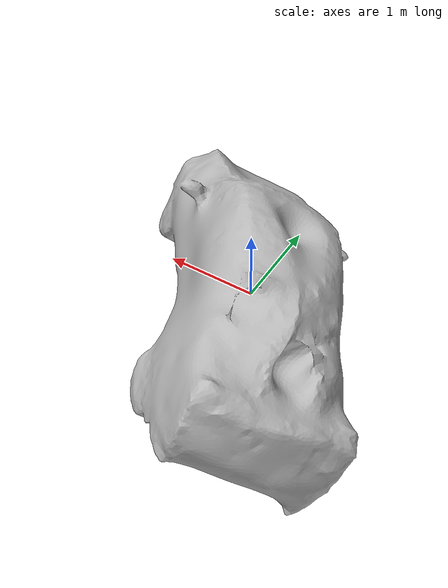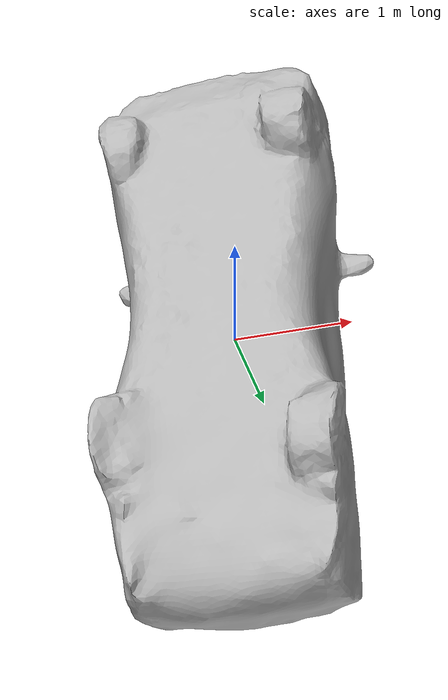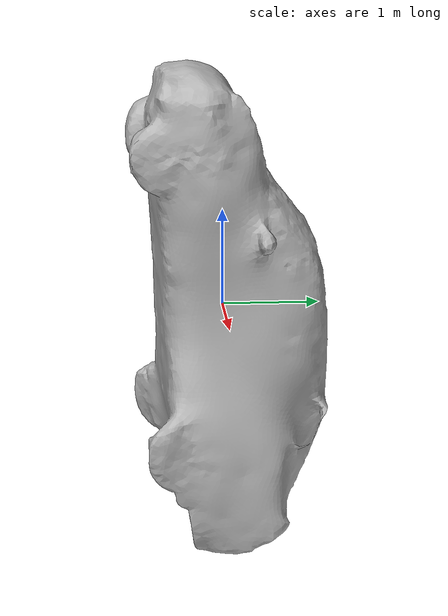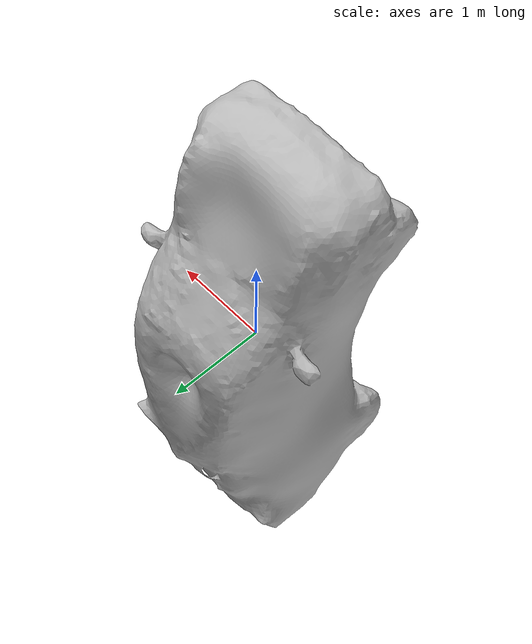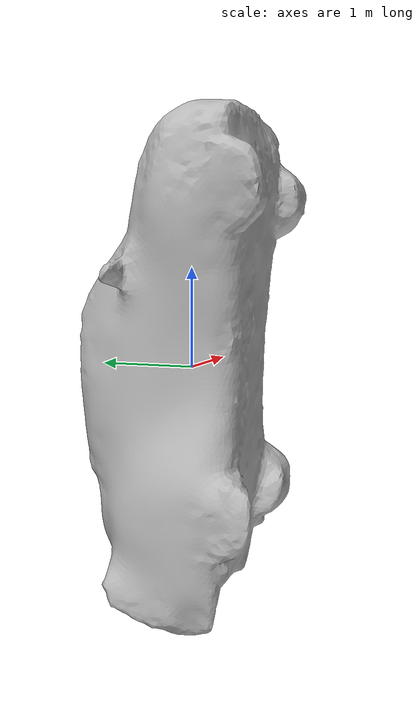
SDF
<?xml version="1.0" ?>
<sdf version="1.6">
  <model name="kare-whitecar">
    <static>true</static>
    <link name='roof_link'>
        <pose>0 0 3.0 0 -0 0</pose>
        <self_collide>1</self_collide>
        <enable_wind>1</enable_wind>
      <kinematic>1</kinematic>
    </link>
    <link name="link">
      <collision name="collision">
        <geometry>
          <mesh>
            <scale>5 5 5</scale>
            <uri>/home/amadeus/model_editor_models/kare-whitecar/meshes/kare-whitecar.obj</uri>
          </mesh>
        </geometry>
      </collision>
      <visual name="visual">
        <geometry>
          <mesh>
            <scale>5 5 5</scale>
            <uri>/home/amadeus/model_editor_models/kare-whitecar/meshes/kare-whitecar.obj</uri>
          </mesh>
        </geometry>
      </visual>
    </link>
  </model>
</sdf>
